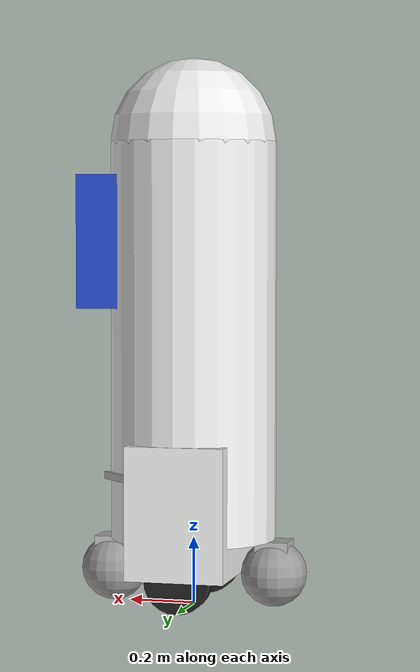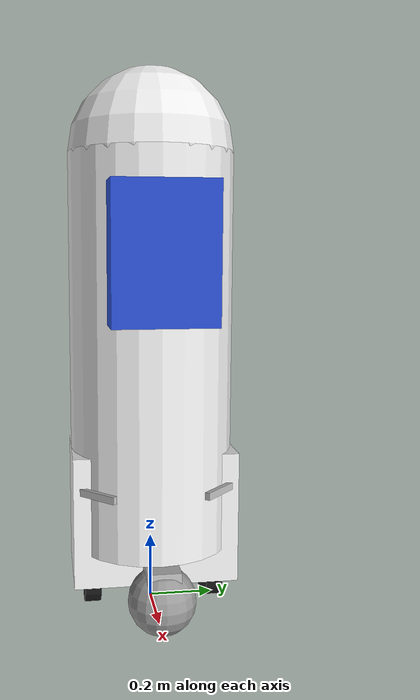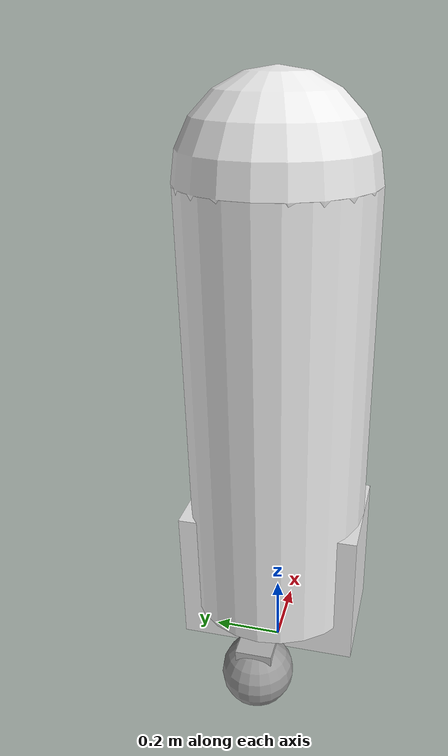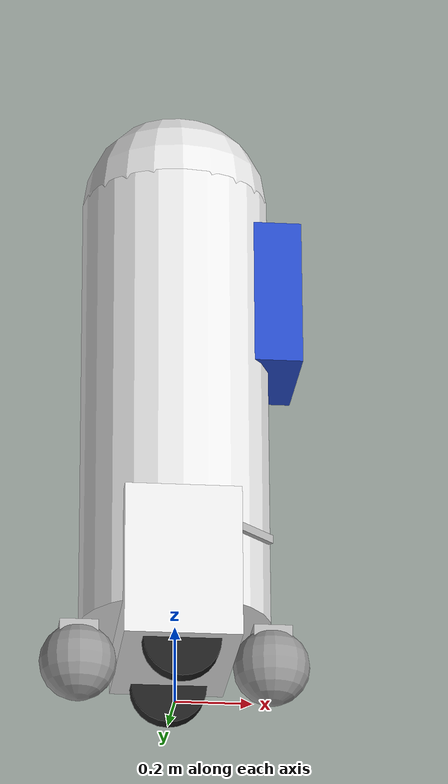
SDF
<sdf version='1.7'>
  <model name='deliverybot'>
    <link name='base_footprint'>
      <inertial>
        <pose>0.001002 -0 0.214619 0 -0 0</pose>
        <mass>13.27</mass>
        <inertia>
          <ixx>3.00328</ixx>
          <ixy>-8.69321e-22</ixy>
          <ixz>-0.00246556</ixz>
          <iyy>2.99707</iyy>
          <iyz>-9.94164e-20</iyz>
          <izz>0.395293</izz>
        </inertia>
      </inertial>
      <collision name='base_footprint_fixed_joint_lump__base_link_collision'>
        <pose>0 0 0.8 0 -0 0</pose>
        <geometry>
          <cylinder>
            <length>1.2</length>
            <radius>0.25</radius>
          </cylinder>
        </geometry>
        <surface>
          <contact>
            <ode>
              <kp>500000</kp>
              <kd>10</kd>
              <max_vel>0.1</max_vel>
              <min_depth>0.001</min_depth>
            </ode>
          </contact>
          <friction>
            <ode>
              <mu>0.2</mu>
              <mu2>0.2</mu2>
              <fdir1>1 0 0</fdir1>
            </ode>
          </friction>
        </surface>
      </collision>
      <collision name='base_footprint_fixed_joint_lump__butt_collision_1'>
        <pose>0 0 0.3 0 -0 0</pose>
        <geometry>
          <box>
            <size>0.3 0.5 0.4</size>
          </box>
        </geometry>
        <surface>
          <contact>
            <ode>
              <kp>500000</kp>
              <kd>10</kd>
              <max_vel>0.1</max_vel>
              <min_depth>0.001</min_depth>
            </ode>
          </contact>
          <friction>
            <ode>
              <mu>0.2</mu>
              <mu2>0.2</mu2>
              <fdir1>1 0 0</fdir1>
            </ode>
          </friction>
        </surface>
      </collision>
      <collision name='base_footprint_fixed_joint_lump__cameraL_collision_2'>
        <pose>0.19 0.18 0.4 0 -0 0.785398</pose>
        <geometry>
          <box>
            <size>0.015 0.13 0.022</size>
          </box>
        </geometry>
        <surface>
          <contact>
            <ode/>
          </contact>
          <friction>
            <ode/>
          </friction>
        </surface>
      </collision>
      <collision name='base_footprint_fixed_joint_lump__cameraR_collision_3'>
        <pose>0.19 -0.18 0.4 3.14159 0 -0.785398</pose>
        <geometry>
          <box>
            <size>0.015 0.13 0.022</size>
          </box>
        </geometry>
        <surface>
          <contact>
            <ode/>
          </contact>
          <friction>
            <ode/>
          </friction>
        </surface>
      </collision>
      <collision name='base_footprint_fixed_joint_lump__casterwheel_back_collision_4'>
        <pose>-0.25 0 0.1 0 -0 0</pose>
        <geometry>
          <sphere>
            <radius>0.1</radius>
          </sphere>
        </geometry>
        <surface>
          <contact>
            <ode>
              <kp>500000</kp>
              <kd>10</kd>
              <max_vel>0.1</max_vel>
              <min_depth>0.001</min_depth>
            </ode>
          </contact>
          <friction>
            <ode>
              <mu>0.001</mu>
              <mu2>0.001</mu2>
              <fdir1>1 0 0</fdir1>
            </ode>
          </friction>
        </surface>
      </collision>
      <collision name='base_footprint_fixed_joint_lump__casterwheel_front_collision_5'>
        <pose>0.25 0 0.1 0 -0 0</pose>
        <geometry>
          <sphere>
            <radius>0.1</radius>
          </sphere>
        </geometry>
        <surface>
          <contact>
            <ode>
              <kp>500000</kp>
              <kd>10</kd>
              <max_vel>0.1</max_vel>
              <min_depth>0.001</min_depth>
            </ode>
          </contact>
          <friction>
            <ode>
              <mu>0.001</mu>
              <mu2>0.001</mu2>
              <fdir1>1 0 0</fdir1>
            </ode>
          </friction>
        </surface>
      </collision>
      <collision name='base_footprint_fixed_joint_lump__head_collision_6'>
        <pose>0 0 1.4 0 -0 0</pose>
        <geometry>
          <sphere>
            <radius>0.25</radius>
          </sphere>
        </geometry>
        <surface>
          <contact>
            <ode>
              <kp>500000</kp>
              <kd>10</kd>
              <max_vel>0.1</max_vel>
              <min_depth>0.001</min_depth>
            </ode>
          </contact>
          <friction>
            <ode>
              <mu>0.2</mu>
              <mu2>0.2</mu2>
              <fdir1>1 0 0</fdir1>
            </ode>
          </friction>
        </surface>
      </collision>
      <collision name='base_footprint_fixed_joint_lump__scan_back_collision_7'>
        <pose>-0.25 0 0.15 0 -0 0</pose>
        <geometry>
          <box>
            <size>0.1 0.1 0.1</size>
          </box>
        </geometry>
        <surface>
          <contact>
            <ode/>
          </contact>
          <friction>
            <ode/>
          </friction>
        </surface>
      </collision>
      <collision name='base_footprint_fixed_joint_lump__scan_front_collision_8'>
        <pose>0.25 0 0.15 3.14159 0 3.14159</pose>
        <geometry>
          <box>
            <size>0.1 0.1 0.1</size>
          </box>
        </geometry>
        <surface>
          <contact>
            <ode/>
          </contact>
          <friction>
            <ode/>
          </friction>
        </surface>
      </collision>
      <collision name='base_footprint_fixed_joint_lump__screen_collision_9'>
        <pose>0.25 0 1.1 0 -0 0</pose>
        <geometry>
          <box>
            <size>0.15 0.3 0.4</size>
          </box>
        </geometry>
        <surface>
          <contact>
            <ode>
              <kp>500000</kp>
              <kd>10</kd>
              <max_vel>0.1</max_vel>
              <min_depth>0.001</min_depth>
            </ode>
          </contact>
          <friction>
            <ode>
              <mu>0.2</mu>
              <mu2>0.2</mu2>
              <fdir1>1 0 0</fdir1>
            </ode>
          </friction>
        </surface>
      </collision>
      <visual name='base_footprint_fixed_joint_lump__base_link_visual'>
        <pose>0 0 0.8 0 -0 0</pose>
        <geometry>
          <cylinder>
            <length>1.2</length>
            <radius>0.25</radius>
          </cylinder>
        </geometry>
        <material>
          <script>
            <name>Gazebo/White</name>
            <uri>file://media/materials/scripts/gazebo.material</uri>
          </script>
        </material>
      </visual>
      <visual name='base_footprint_fixed_joint_lump__butt_visual_1'>
        <pose>0 0 0.3 0 -0 0</pose>
        <geometry>
          <box>
            <size>0.3 0.5 0.4</size>
          </box>
        </geometry>
        <material>
          <script>
            <name>Gazebo/White</name>
            <uri>file://media/materials/scripts/gazebo.material</uri>
          </script>
        </material>
      </visual>
      <visual name='base_footprint_fixed_joint_lump__cameraL_visual_2'>
        <pose>0.19 0.18 0.4 0 -0 0.785398</pose>
        <geometry>
          <box>
            <size>0.015 0.13 0.022</size>
          </box>
        </geometry>
      </visual>
      <visual name='base_footprint_fixed_joint_lump__cameraR_visual_3'>
        <pose>0.19 -0.18 0.4 3.14159 0 -0.785398</pose>
        <geometry>
          <box>
            <size>0.015 0.13 0.022</size>
          </box>
        </geometry>
      </visual>
      <visual name='base_footprint_fixed_joint_lump__casterwheel_back_visual_4'>
        <pose>-0.25 0 0.1 0 -0 0</pose>
        <geometry>
          <sphere>
            <radius>0.1</radius>
          </sphere>
        </geometry>
        <material>
          <script>
            <name>Gazebo/Grey</name>
            <uri>file://media/materials/scripts/gazebo.material</uri>
          </script>
        </material>
      </visual>
      <visual name='base_footprint_fixed_joint_lump__casterwheel_front_visual_5'>
        <pose>0.25 0 0.1 0 -0 0</pose>
        <geometry>
          <sphere>
            <radius>0.1</radius>
          </sphere>
        </geometry>
        <material>
          <script>
            <name>Gazebo/Grey</name>
            <uri>file://media/materials/scripts/gazebo.material</uri>
          </script>
        </material>
      </visual>
      <visual name='base_footprint_fixed_joint_lump__head_visual_6'>
        <pose>0 0 1.4 0 -0 0</pose>
        <geometry>
          <sphere>
            <radius>0.25</radius>
          </sphere>
        </geometry>
        <material>
          <script>
            <name>Gazebo/White</name>
            <uri>file://media/materials/scripts/gazebo.material</uri>
          </script>
        </material>
      </visual>
      <visual name='base_footprint_fixed_joint_lump__scan_back_visual_7'>
        <pose>-0.25 0 0.15 0 -0 0</pose>
        <geometry>
          <box>
            <size>0.1 0.1 0.1</size>
          </box>
        </geometry>
      </visual>
      <visual name='base_footprint_fixed_joint_lump__scan_front_visual_8'>
        <pose>0.25 0 0.15 3.14159 0 3.14159</pose>
        <geometry>
          <box>
            <size>0.1 0.1 0.1</size>
          </box>
        </geometry>
      </visual>
      <visual name='base_footprint_fixed_joint_lump__screen_visual_9'>
        <pose>0.25 0 1.1 0 -0 0</pose>
        <geometry>
          <box>
            <size>0.15 0.3 0.4</size>
          </box>
        </geometry>
        <material>
          <script>
            <name>Gazebo/Blue</name>
            <uri>file://media/materials/scripts/gazebo.material</uri>
          </script>
        </material>
      </visual>
      <sensor name='depth_cameraL' type='depth'>
        <visualize>1</visualize>
        <update_rate>30</update_rate>
        <camera name='cameraL'>
          <horizontal_fov>1.0472</horizontal_fov>
          <image>
            <width>640</width>
            <height>480</height>
            <format>R8G8B8</format>
          </image>
          <clip>
            <near>0.05</near>
            <far>3</far>
          </clip>
        </camera>
        <plugin name='depth_cameraL_controller' filename='libgazebo_ros_camera.so'>
          <baseline>0.2</baseline>
          <alwaysOn>1</alwaysOn>
          <updateRate>0.0</updateRate>
          <frame_name>cameraL_depth_frame</frame_name>
          <pointCloudCutoff>0.5</pointCloudCutoff>
          <pointCloudCutoffMax>3.0</pointCloudCutoffMax>
          <distortionK1>0</distortionK1>
          <distortionK2>0</distortionK2>
          <distortionK3>0</distortionK3>
          <distortionT1>0</distortionT1>
          <distortionT2>0</distortionT2>
          <CxPrime>0</CxPrime>
          <Cx>0</Cx>
          <Cy>0</Cy>
          <focalLength>0</focalLength>
          <hackBaseline>0</hackBaseline>
        </plugin>
        <pose>0.19 0.18 0.4 0 -0 0.785398</pose>
      </sensor>
      <sensor name='depth_cameraR' type='depth'>
        <visualize>1</visualize>
        <update_rate>30</update_rate>
        <camera name='cameraR'>
          <horizontal_fov>1.0472</horizontal_fov>
          <image>
            <width>640</width>
            <height>480</height>
            <format>R8G8B8</format>
          </image>
          <clip>
            <near>0.05</near>
            <far>3</far>
          </clip>
        </camera>
        <plugin name='depth_cameraR_controller' filename='libgazebo_ros_camera.so'>
          <baseline>0.2</baseline>
          <alwaysOn>1</alwaysOn>
          <updateRate>0.0</updateRate>
          <frame_name>cameraR_depth_frame</frame_name>
          <pointCloudCutoff>0.5</pointCloudCutoff>
          <pointCloudCutoffMax>3.0</pointCloudCutoffMax>
          <distortionK1>0</distortionK1>
          <distortionK2>0</distortionK2>
          <distortionK3>0</distortionK3>
          <distortionT1>0</distortionT1>
          <distortionT2>0</distortionT2>
          <CxPrime>0</CxPrime>
          <Cx>0</Cx>
          <Cy>0</Cy>
          <focalLength>0</focalLength>
          <hackBaseline>0</hackBaseline>
        </plugin>
        <pose>0.19 -0.18 0.4 3.14159 -0 -0.785398</pose>
      </sensor>
      <sensor name='imu' type='imu'>
        <plugin name='imu_plugin' filename='libgazebo_ros_imu_sensor.so'>
          <ros>
            <namespace/>
            <remapping>~/out:=imu</remapping>
          </ros>
          <initial_orientation_as_reference>0</initial_orientation_as_reference>
        </plugin>
        <always_on>1</always_on>
        <update_rate>100</update_rate>
        <visualize>1</visualize>
        <imu>
          <angular_velocity>
            <x>
              <noise type='gaussian'>
                <mean>0</mean>
                <stddev>0.0002</stddev>
                <bias_mean>7.5e-06</bias_mean>
                <bias_stddev>8e-07</bias_stddev>
              </noise>
            </x>
            <y>
              <noise type='gaussian'>
                <mean>0</mean>
                <stddev>0.0002</stddev>
                <bias_mean>7.5e-06</bias_mean>
                <bias_stddev>8e-07</bias_stddev>
              </noise>
            </y>
            <z>
              <noise type='gaussian'>
                <mean>0</mean>
                <stddev>0.0002</stddev>
                <bias_mean>7.5e-06</bias_mean>
                <bias_stddev>8e-07</bias_stddev>
              </noise>
            </z>
          </angular_velocity>
          <linear_acceleration>
            <x>
              <noise type='gaussian'>
                <mean>0</mean>
                <stddev>0.017</stddev>
                <bias_mean>0.1</bias_mean>
                <bias_stddev>0.001</bias_stddev>
              </noise>
            </x>
            <y>
              <noise type='gaussian'>
                <mean>0</mean>
                <stddev>0.017</stddev>
                <bias_mean>0.1</bias_mean>
                <bias_stddev>0.001</bias_stddev>
              </noise>
            </y>
            <z>
              <noise type='gaussian'>
                <mean>0</mean>
                <stddev>0.017</stddev>
                <bias_mean>0.1</bias_mean>
                <bias_stddev>0.001</bias_stddev>
              </noise>
            </z>
          </linear_acceleration>
        </imu>
        <pose>-0.15 0 0.6 0 -0 0</pose>
      </sensor>
      <sensor name='scan_back_hokuyo_sensor' type='ray'>
        <always_on>1</always_on>
        <visualize>1</visualize>
        <update_rate>10</update_rate>
        <ray>
          <scan>
            <horizontal>
              <samples>360</samples>
              <resolution>1</resolution>
              <min_angle>0</min_angle>
              <max_angle>6.28</max_angle>
            </horizontal>
          </scan>
          <range>
            <min>0.12</min>
            <max>40</max>
            <resolution>0.03</resolution>
          </range>
          <noise>
            <type>gaussian</type>
            <mean>0</mean>
            <stddev>0.05</stddev>
          </noise>
        </ray>
        <plugin name='gazebo_ros_scan_back_controller' filename='libgazebo_ros_ray_sensor.so'>
          <ros>
            <remapping>~/out:=scan_back</remapping>
          </ros>
          <output_type>sensor_msgs/LaserScan</output_type>
          <frame_name>scan_back</frame_name>
        </plugin>
        <pose>-0.25 0 0.15 0 -0 0</pose>
      </sensor>
      <sensor name='scan_front_hokuyo_sensor' type='ray'>
        <always_on>1</always_on>
        <visualize>1</visualize>
        <update_rate>10</update_rate>
        <ray>
          <scan>
            <horizontal>
              <samples>360</samples>
              <resolution>1</resolution>
              <min_angle>0</min_angle>
              <max_angle>6.28</max_angle>
            </horizontal>
          </scan>
          <range>
            <min>0.12</min>
            <max>40</max>
            <resolution>0.03</resolution>
          </range>
          <noise>
            <type>gaussian</type>
            <mean>0</mean>
            <stddev>0.05</stddev>
          </noise>
        </ray>
        <plugin name='gazebo_ros_scan_front_controller' filename='libgazebo_ros_ray_sensor.so'>
          <ros>
            <remapping>~/out:=scan</remapping>
          </ros>
          <output_type>sensor_msgs/LaserScan</output_type>
          <frame_name>scan_front</frame_name>
        </plugin>
        <pose>0.25 0 0.15 3.14159 0 3.14159</pose>
      </sensor>
    </link>
    <joint name='left_wheel_joint' type='revolute'>
      <pose relative_to='base_footprint'>0 0.19 0.1 -1.5708 0 0</pose>
      <parent>base_footprint</parent>
      <child>left_wheel</child>
      <axis>
        <xyz>0 0 1</xyz>
        <limit>
          <lower>-1e+16</lower>
          <upper>1e+16</upper>
        </limit>
        <dynamics>
          <spring_reference>0</spring_reference>
          <spring_stiffness>0</spring_stiffness>
        </dynamics>
      </axis>
    </joint>
    <link name='left_wheel'>
      <pose relative_to='left_wheel_joint'>0 0 0 0 -0 0</pose>
      <inertial>
        <pose>0 0 0 0 -0 0</pose>
        <mass>0.1</mass>
        <inertia>
          <ixx>0.000270833</ixx>
          <ixy>0</ixy>
          <ixz>0</ixz>
          <iyy>0.000270833</iyy>
          <iyz>0</iyz>
          <izz>0.0005</izz>
        </inertia>
      </inertial>
      <collision name='left_wheel_collision'>
        <pose>0 0 0 0 -0 0</pose>
        <geometry>
          <sphere>
            <radius>0.1</radius>
          </sphere>
        </geometry>
        <surface>
          <contact>
            <ode>
              <kp>500000</kp>
              <kd>10</kd>
              <max_vel>0.1</max_vel>
              <min_depth>0.001</min_depth>
            </ode>
          </contact>
          <friction>
            <ode>
              <mu>10000</mu>
              <mu2>10000</mu2>
              <fdir1>1 0 0</fdir1>
            </ode>
          </friction>
        </surface>
      </collision>
      <visual name='left_wheel_visual'>
        <pose>0 0 0 0 -0 0</pose>
        <geometry>
          <cylinder>
            <length>0.05</length>
            <radius>0.1</radius>
          </cylinder>
        </geometry>
        <material>
          <script>
            <name>Gazebo/Black</name>
            <uri>file://media/materials/scripts/gazebo.material</uri>
          </script>
        </material>
      </visual>
    </link>
    <joint name='right_wheel_joint' type='revolute'>
      <pose relative_to='base_footprint'>0 -0.19 0.1 -1.5708 0 0</pose>
      <parent>base_footprint</parent>
      <child>right_wheel</child>
      <axis>
        <xyz>0 0 1</xyz>
        <limit>
          <lower>-1e+16</lower>
          <upper>1e+16</upper>
        </limit>
        <dynamics>
          <spring_reference>0</spring_reference>
          <spring_stiffness>0</spring_stiffness>
        </dynamics>
      </axis>
    </joint>
    <link name='right_wheel'>
      <pose relative_to='right_wheel_joint'>0 0 0 0 -0 0</pose>
      <inertial>
        <pose>0 0 0 0 -0 0</pose>
        <mass>0.1</mass>
        <inertia>
          <ixx>0.000270833</ixx>
          <ixy>0</ixy>
          <ixz>0</ixz>
          <iyy>0.000270833</iyy>
          <iyz>0</iyz>
          <izz>0.0005</izz>
        </inertia>
      </inertial>
      <collision name='right_wheel_collision'>
        <pose>0 0 0 0 -0 0</pose>
        <geometry>
          <sphere>
            <radius>0.1</radius>
          </sphere>
        </geometry>
        <surface>
          <contact>
            <ode>
              <kp>500000</kp>
              <kd>10</kd>
              <max_vel>0.1</max_vel>
              <min_depth>0.001</min_depth>
            </ode>
          </contact>
          <friction>
            <ode>
              <mu>10000</mu>
              <mu2>10000</mu2>
              <fdir1>1 0 0</fdir1>
            </ode>
          </friction>
        </surface>
      </collision>
      <visual name='right_wheel_visual'>
        <pose>0 0 0 0 -0 0</pose>
        <geometry>
          <cylinder>
            <length>0.05</length>
            <radius>0.1</radius>
          </cylinder>
        </geometry>
        <material>
          <script>
            <name>Gazebo/Black</name>
            <uri>file://media/materials/scripts/gazebo.material</uri>
          </script>
        </material>
      </visual>
    </link>
    <static>0</static>
    <plugin name='diff_drive_controller' filename='libgazebo_ros_diff_drive.so'>
      <left_joint>left_wheel_joint</left_joint>
      <right_joint>right_wheel_joint</right_joint>
      <wheel_separation>0.38</wheel_separation>
      <wheel_diameter>0.2</wheel_diameter>
      <max_wheel_acceleration>1.0</max_wheel_acceleration>
      <max_wheel_torque>20</max_wheel_torque>
      <command_topic>cmd_vel</command_topic>
      <odometry_topic>odom</odometry_topic>
      <odometry_frame>odom</odometry_frame>
      <robot_base_frame>base_footprint</robot_base_frame>
      <publish_odom>1</publish_odom>
      <publish_odom_tf>0</publish_odom_tf>
      <publish_wheel_tf>0</publish_wheel_tf>
    </plugin>
    <plugin name='turtlebot3_joint_state' filename='libgazebo_ros_joint_state_publisher.so'>
      <ros>
        <remapping>~/out:=joint_states</remapping>
      </ros>
      <update_rate>30</update_rate>
      <joint_name>left_wheel_joint</joint_name>
      <joint_name>right_wheel_joint</joint_name>
    </plugin>
  </model>
</sdf>
